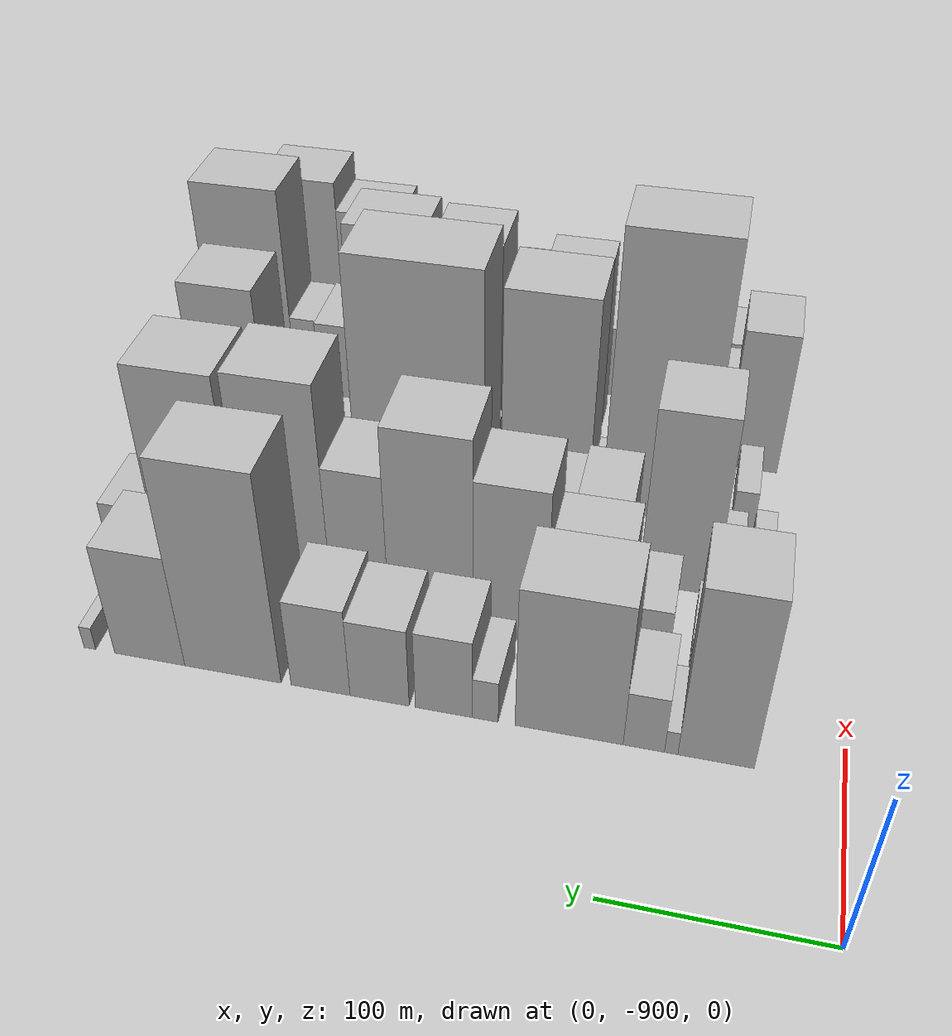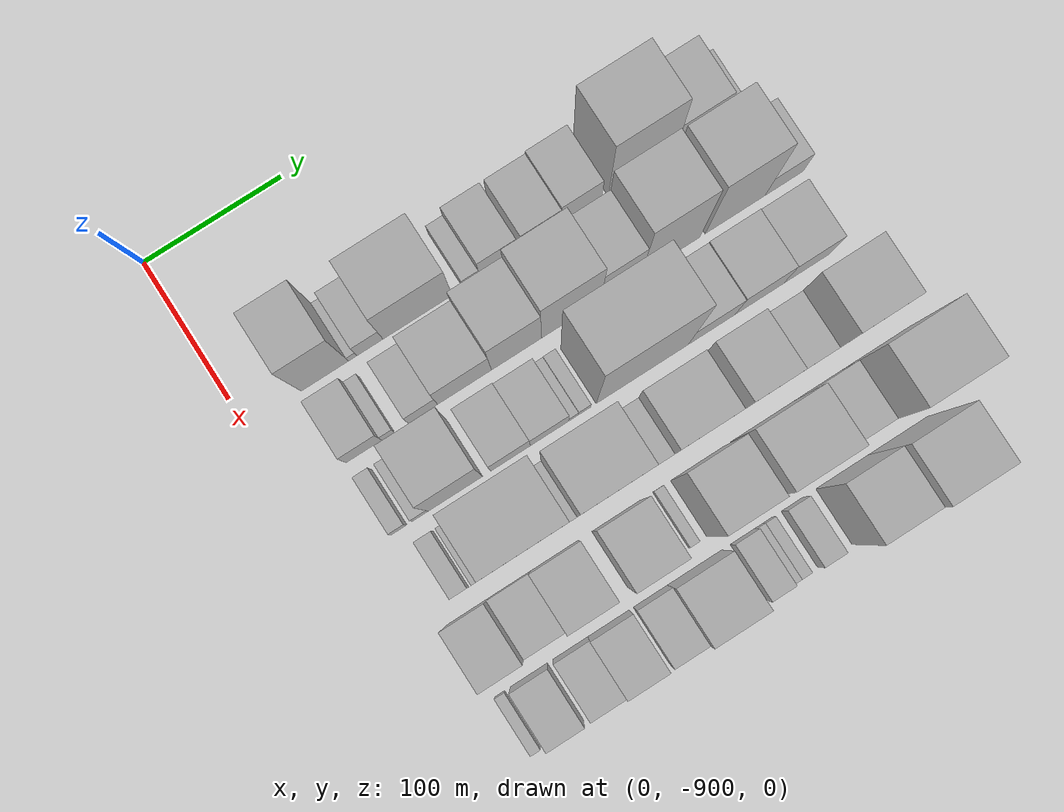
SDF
<sdf version="1.6">
 <world name="default">
  <model name="building_1">
   <static>1</static>
   <pose>100.0000 -842.8567 0 0.000000 0.000000 0.000000</pose>
   <link name="link">
    <pose>0 0 54.00 0 0 0</pose>
    <collision name="collision"><geometry><box><size>40.0000 34.2865 108.0000</size></box></geometry></collision>
    <visual name="visual">
     <cast_shadows>0</cast_shadows>
     <geometry><box><size>40.0000 34.2865 108.0000</size></box></geometry>
     <material>
      <script>
       <uri>model://HANNAS_wall/materials/scripts</uri>
       <uri>model://HANNAS_wall/materials/textures</uri>
       <name>vrc/HANNAS_wall</name>
      </script>
     </material>
    </visual>
   </link>
  </model>
  <model name="building_2">
   <static>1</static>
   <pose>100.0000 -822.6795 0 0.000000 0.000000 0.000000</pose>
   <link name="link">
    <pose>0 0 7.50 0 0 0</pose>
    <collision name="collision"><geometry><box><size>40.0000 6.0679 15.0000</size></box></geometry></collision>
    <visual name="visual">
     <cast_shadows>0</cast_shadows>
     <geometry><box><size>40.0000 6.0679 15.0000</size></box></geometry>
     <material>
      <script>
       <uri>model://HANNAS_wall/materials/scripts</uri>
       <uri>model://HANNAS_wall/materials/textures</uri>
       <name>vrc/HANNAS_wall</name>
      </script>
     </material>
    </visual>
   </link>
  </model>
  <model name="building_3">
   <static>1</static>
   <pose>100.0000 -810.2094 0 0.000000 0.000000 0.000000</pose>
   <link name="link">
    <pose>0 0 18.00 0 0 0</pose>
    <collision name="collision"><geometry><box><size>40.0000 18.8723 36.0000</size></box></geometry></collision>
    <visual name="visual">
     <cast_shadows>0</cast_shadows>
     <geometry><box><size>40.0000 18.8723 36.0000</size></box></geometry>
     <material>
      <script>
       <uri>model://HANNAS_wall/materials/scripts</uri>
       <uri>model://HANNAS_wall/materials/textures</uri>
       <name>vrc/HANNAS_wall</name>
      </script>
     </material>
    </visual>
   </link>
  </model>
  <model name="building_4">
   <static>1</static>
   <pose>100.0000 -775.6286 0 0.000000 0.000000 0.000000</pose>
   <link name="link">
    <pose>0 0 45.00 0 0 0</pose>
    <collision name="collision"><geometry><box><size>40.0000 50.2893 90.0000</size></box></geometry></collision>
    <visual name="visual">
     <cast_shadows>0</cast_shadows>
     <geometry><box><size>40.0000 50.2893 90.0000</size></box></geometry>
     <material>
      <script>
       <uri>model://HANNAS_wall/materials/scripts</uri>
       <uri>model://HANNAS_wall/materials/textures</uri>
       <name>vrc/HANNAS_wall</name>
      </script>
     </material>
    </visual>
   </link>
  </model>
  <model name="building_5">
   <static>1</static>
   <pose>100.0000 -736.3963 0 0.000000 0.000000 0.000000</pose>
   <link name="link">
    <pose>0 0 13.50 0 0 0</pose>
    <collision name="collision"><geometry><box><size>40.0000 12.1753 27.0000</size></box></geometry></collision>
    <visual name="visual">
     <cast_shadows>0</cast_shadows>
     <geometry><box><size>40.0000 12.1753 27.0000</size></box></geometry>
     <material>
      <script>
       <uri>model://HANNAS_wall/materials/scripts</uri>
       <uri>model://HANNAS_wall/materials/textures</uri>
       <name>vrc/HANNAS_wall</name>
      </script>
     </material>
    </visual>
   </link>
  </model>
  <model name="building_6">
   <static>1</static>
   <pose>100.0000 -716.5740 0 0.000000 0.000000 0.000000</pose>
   <link name="link">
    <pose>0 0 25.50 0 0 0</pose>
    <collision name="collision"><geometry><box><size>40.0000 27.4694 51.0000</size></box></geometry></collision>
    <visual name="visual">
     <cast_shadows>0</cast_shadows>
     <geometry><box><size>40.0000 27.4694 51.0000</size></box></geometry>
     <material>
      <script>
       <uri>model://HANNAS_wall/materials/scripts</uri>
       <uri>model://HANNAS_wall/materials/textures</uri>
       <name>vrc/HANNAS_wall</name>
      </script>
     </material>
    </visual>
   </link>
  </model>
  <model name="building_7">
   <static>1</static>
   <pose>100.0000 -685.3520 0 0.000000 0.000000 0.000000</pose>
   <link name="link">
    <pose>0 0 25.50 0 0 0</pose>
    <collision name="collision"><geometry><box><size>40.0000 28.9746 51.0000</size></box></geometry></collision>
    <visual name="visual">
     <cast_shadows>0</cast_shadows>
     <geometry><box><size>40.0000 28.9746 51.0000</size></box></geometry>
     <material>
      <script>
       <uri>model://HANNAS_wall/materials/scripts</uri>
       <uri>model://HANNAS_wall/materials/textures</uri>
       <name>vrc/HANNAS_wall</name>
      </script>
     </material>
    </visual>
   </link>
  </model>
  <model name="building_8">
   <static>1</static>
   <pose>100.0000 -656.1818 0 0.000000 0.000000 0.000000</pose>
   <link name="link">
    <pose>0 0 28.50 0 0 0</pose>
    <collision name="collision"><geometry><box><size>40.0000 29.3658 57.0000</size></box></geometry></collision>
    <visual name="visual">
     <cast_shadows>0</cast_shadows>
     <geometry><box><size>40.0000 29.3658 57.0000</size></box></geometry>
     <material>
      <script>
       <uri>model://HANNAS_wall/materials/scripts</uri>
       <uri>model://HANNAS_wall/materials/textures</uri>
       <name>vrc/HANNAS_wall</name>
      </script>
     </material>
    </visual>
   </link>
  </model>
  <model name="building_9">
   <static>1</static>
   <pose>100.0000 -611.9752 0 0.000000 0.000000 0.000000</pose>
   <link name="link">
    <pose>0 0 66.00 0 0 0</pose>
    <collision name="collision"><geometry><box><size>40.0000 49.0474 132.0000</size></box></geometry></collision>
    <visual name="visual">
     <cast_shadows>0</cast_shadows>
     <geometry><box><size>40.0000 49.0474 132.0000</size></box></geometry>
     <material>
      <script>
       <uri>model://HANNAS_wall/materials/scripts</uri>
       <uri>model://HANNAS_wall/materials/textures</uri>
       <name>vrc/HANNAS_wall</name>
      </script>
     </material>
    </visual>
   </link>
  </model>
  <model name="building_10">
   <static>1</static>
   <pose>100.0000 -569.1841 0 0.000000 0.000000 0.000000</pose>
   <link name="link">
    <pose>0 0 36.00 0 0 0</pose>
    <collision name="collision"><geometry><box><size>40.0000 36.5348 72.0000</size></box></geometry></collision>
    <visual name="visual">
     <cast_shadows>0</cast_shadows>
     <geometry><box><size>40.0000 36.5348 72.0000</size></box></geometry>
     <material>
      <script>
       <uri>model://HANNAS_wall/materials/scripts</uri>
       <uri>model://HANNAS_wall/materials/textures</uri>
       <name>vrc/HANNAS_wall</name>
      </script>
     </material>
    </visual>
   </link>
  </model>
  <model name="building_11">
   <static>1</static>
   <pose>100.0000 -537.8415 0 0.000000 0.000000 0.000000</pose>
   <link name="link">
    <pose>0 0 7.50 0 0 0</pose>
    <collision name="collision"><geometry><box><size>40.0000 6.1504 15.0000</size></box></geometry></collision>
    <visual name="visual">
     <cast_shadows>0</cast_shadows>
     <geometry><box><size>40.0000 6.1504 15.0000</size></box></geometry>
     <material>
      <script>
       <uri>model://HANNAS_wall/materials/scripts</uri>
       <uri>model://HANNAS_wall/materials/textures</uri>
       <name>vrc/HANNAS_wall</name>
      </script>
     </material>
    </visual>
   </link>
  </model>
  <model name="building_54">
   <static>1</static>
   <pose>152.0000 -847.2493 0 0.000000 0.000000 0.000000</pose>
   <link name="link">
    <pose>0 0 22.50 0 0 0</pose>
    <collision name="collision"><geometry><box><size>40.0000 25.5014 45.0000</size></box></geometry></collision>
    <visual name="visual">
     <cast_shadows>0</cast_shadows>
     <geometry><box><size>40.0000 25.5014 45.0000</size></box></geometry>
     <material>
      <script>
       <uri>model://HANNAS_wall/materials/scripts</uri>
       <uri>model://HANNAS_wall/materials/textures</uri>
       <name>vrc/HANNAS_wall</name>
      </script>
     </material>
    </visual>
   </link>
  </model>
  <model name="building_55">
   <static>1</static>
   <pose>152.0000 -829.9720 0 0.000000 0.000000 0.000000</pose>
   <link name="link">
    <pose>0 0 10.50 0 0 0</pose>
    <collision name="collision"><geometry><box><size>40.0000 9.0531 21.0000</size></box></geometry></collision>
    <visual name="visual">
     <cast_shadows>0</cast_shadows>
     <geometry><box><size>40.0000 9.0531 21.0000</size></box></geometry>
     <material>
      <script>
       <uri>model://HANNAS_wall/materials/scripts</uri>
       <uri>model://HANNAS_wall/materials/textures</uri>
       <name>vrc/HANNAS_wall</name>
      </script>
     </material>
    </visual>
   </link>
  </model>
  <model name="building_56">
   <static>1</static>
   <pose>152.0000 -804.8071 0 0.000000 0.000000 0.000000</pose>
   <link name="link">
    <pose>0 0 18.00 0 0 0</pose>
    <collision name="collision"><geometry><box><size>40.0000 21.2767 36.0000</size></box></geometry></collision>
    <visual name="visual">
     <cast_shadows>0</cast_shadows>
     <geometry><box><size>40.0000 21.2767 36.0000</size></box></geometry>
     <material>
      <script>
       <uri>model://HANNAS_wall/materials/scripts</uri>
       <uri>model://HANNAS_wall/materials/textures</uri>
       <name>vrc/HANNAS_wall</name>
      </script>
     </material>
    </visual>
   </link>
  </model>
  <model name="building_57">
   <static>1</static>
   <pose>152.0000 -774.6374 0 0.000000 0.000000 0.000000</pose>
   <link name="link">
    <pose>0 0 33.00 0 0 0</pose>
    <collision name="collision"><geometry><box><size>40.0000 39.0627 66.0000</size></box></geometry></collision>
    <visual name="visual">
     <cast_shadows>0</cast_shadows>
     <geometry><box><size>40.0000 39.0627 66.0000</size></box></geometry>
     <material>
      <script>
       <uri>model://HANNAS_wall/materials/scripts</uri>
       <uri>model://HANNAS_wall/materials/textures</uri>
       <name>vrc/HANNAS_wall</name>
      </script>
     </material>
    </visual>
   </link>
  </model>
  <model name="building_58">
   <static>1</static>
   <pose>152.0000 -736.8742 0 0.000000 0.000000 0.000000</pose>
   <link name="link">
    <pose>0 0 49.50 0 0 0</pose>
    <collision name="collision"><geometry><box><size>40.0000 36.4637 99.0000</size></box></geometry></collision>
    <visual name="visual">
     <cast_shadows>0</cast_shadows>
     <geometry><box><size>40.0000 36.4637 99.0000</size></box></geometry>
     <material>
      <script>
       <uri>model://HANNAS_wall/materials/scripts</uri>
       <uri>model://HANNAS_wall/materials/textures</uri>
       <name>vrc/HANNAS_wall</name>
      </script>
     </material>
    </visual>
   </link>
  </model>
  <model name="building_59">
   <static>1</static>
   <pose>152.0000 -697.1276 0 0.000000 0.000000 0.000000</pose>
   <link name="link">
    <pose>0 0 61.50 0 0 0</pose>
    <collision name="collision"><geometry><box><size>40.0000 43.0296 123.0000</size></box></geometry></collision>
    <visual name="visual">
     <cast_shadows>0</cast_shadows>
     <geometry><box><size>40.0000 43.0296 123.0000</size></box></geometry>
     <material>
      <script>
       <uri>model://HANNAS_wall/materials/scripts</uri>
       <uri>model://HANNAS_wall/materials/textures</uri>
       <name>vrc/HANNAS_wall</name>
      </script>
     </material>
    </visual>
   </link>
  </model>
  <model name="building_60">
   <static>1</static>
   <pose>152.0000 -660.8821 0 0.000000 0.000000 0.000000</pose>
   <link name="link">
    <pose>0 0 46.50 0 0 0</pose>
    <collision name="collision"><geometry><box><size>40.0000 29.4615 93.0000</size></box></geometry></collision>
    <visual name="visual">
     <cast_shadows>0</cast_shadows>
     <geometry><box><size>40.0000 29.4615 93.0000</size></box></geometry>
     <material>
      <script>
       <uri>model://HANNAS_wall/materials/scripts</uri>
       <uri>model://HANNAS_wall/materials/textures</uri>
       <name>vrc/HANNAS_wall</name>
      </script>
     </material>
    </visual>
   </link>
  </model>
  <model name="building_61">
   <static>1</static>
   <pose>152.0000 -624.5359 0 0.000000 0.000000 0.000000</pose>
   <link name="link">
    <pose>0 0 70.50 0 0 0</pose>
    <collision name="collision"><geometry><box><size>40.0000 43.2308 141.0000</size></box></geometry></collision>
    <visual name="visual">
     <cast_shadows>0</cast_shadows>
     <geometry><box><size>40.0000 43.2308 141.0000</size></box></geometry>
     <material>
      <script>
       <uri>model://HANNAS_wall/materials/scripts</uri>
       <uri>model://HANNAS_wall/materials/textures</uri>
       <name>vrc/HANNAS_wall</name>
      </script>
     </material>
    </visual>
   </link>
  </model>
  <model name="building_62">
   <static>1</static>
   <pose>152.0000 -576.8171 0 0.000000 0.000000 0.000000</pose>
   <link name="link">
    <pose>0 0 69.00 0 0 0</pose>
    <collision name="collision"><geometry><box><size>40.0000 44.2067 138.0000</size></box></geometry></collision>
    <visual name="visual">
     <cast_shadows>0</cast_shadows>
     <geometry><box><size>40.0000 44.2067 138.0000</size></box></geometry>
     <material>
      <script>
       <uri>model://HANNAS_wall/materials/scripts</uri>
       <uri>model://HANNAS_wall/materials/textures</uri>
       <name>vrc/HANNAS_wall</name>
      </script>
     </material>
    </visual>
   </link>
  </model>
  <model name="building_63">
   <static>1</static>
   <pose>152.0000 -540.6397 0 0.000000 0.000000 0.000000</pose>
   <link name="link">
    <pose>0 0 24.00 0 0 0</pose>
    <collision name="collision"><geometry><box><size>40.0000 28.1481 48.0000</size></box></geometry></collision>
    <visual name="visual">
     <cast_shadows>0</cast_shadows>
     <geometry><box><size>40.0000 28.1481 48.0000</size></box></geometry>
     <material>
      <script>
       <uri>model://HANNAS_wall/materials/scripts</uri>
       <uri>model://HANNAS_wall/materials/textures</uri>
       <name>vrc/HANNAS_wall</name>
      </script>
     </material>
    </visual>
   </link>
  </model>
  <model name="building_105">
   <static>1</static>
   <pose>204.0000 -854.5983 0 0.000000 0.000000 0.000000</pose>
   <link name="link">
    <pose>0 0 13.50 0 0 0</pose>
    <collision name="collision"><geometry><box><size>40.0000 10.8033 27.0000</size></box></geometry></collision>
    <visual name="visual">
     <cast_shadows>0</cast_shadows>
     <geometry><box><size>40.0000 10.8033 27.0000</size></box></geometry>
     <material>
      <script>
       <uri>model://HANNAS_wall/materials/scripts</uri>
       <uri>model://HANNAS_wall/materials/textures</uri>
       <name>vrc/HANNAS_wall</name>
      </script>
     </material>
    </visual>
   </link>
  </model>
  <model name="building_106">
   <static>1</static>
   <pose>204.0000 -839.3676 0 0.000000 0.000000 0.000000</pose>
   <link name="link">
    <pose>0 0 12.00 0 0 0</pose>
    <collision name="collision"><geometry><box><size>40.0000 11.6581 24.0000</size></box></geometry></collision>
    <visual name="visual">
     <cast_shadows>0</cast_shadows>
     <geometry><box><size>40.0000 11.6581 24.0000</size></box></geometry>
     <material>
      <script>
       <uri>model://HANNAS_wall/materials/scripts</uri>
       <uri>model://HANNAS_wall/materials/textures</uri>
       <name>vrc/HANNAS_wall</name>
      </script>
     </material>
    </visual>
   </link>
  </model>
  <model name="building_107">
   <static>1</static>
   <pose>204.0000 -814.0601 0 0.000000 0.000000 0.000000</pose>
   <link name="link">
    <pose>0 0 57.00 0 0 0</pose>
    <collision name="collision"><geometry><box><size>40.0000 38.9570 114.0000</size></box></geometry></collision>
    <visual name="visual">
     <cast_shadows>0</cast_shadows>
     <geometry><box><size>40.0000 38.9570 114.0000</size></box></geometry>
     <material>
      <script>
       <uri>model://HANNAS_wall/materials/scripts</uri>
       <uri>model://HANNAS_wall/materials/textures</uri>
       <name>vrc/HANNAS_wall</name>
      </script>
     </material>
    </visual>
   </link>
  </model>
  <model name="building_108">
   <static>1</static>
   <pose>204.0000 -774.3793 0 0.000000 0.000000 0.000000</pose>
   <link name="link">
    <pose>0 0 27.00 0 0 0</pose>
    <collision name="collision"><geometry><box><size>40.0000 28.4046 54.0000</size></box></geometry></collision>
    <visual name="visual">
     <cast_shadows>0</cast_shadows>
     <geometry><box><size>40.0000 28.4046 54.0000</size></box></geometry>
     <material>
      <script>
       <uri>model://HANNAS_wall/materials/scripts</uri>
       <uri>model://HANNAS_wall/materials/textures</uri>
       <name>vrc/HANNAS_wall</name>
      </script>
     </material>
    </visual>
   </link>
  </model>
  <model name="building_109">
   <static>1</static>
   <pose>204.0000 -746.3377 0 0.000000 0.000000 0.000000</pose>
   <link name="link">
    <pose>0 0 24.00 0 0 0</pose>
    <collision name="collision"><geometry><box><size>40.0000 27.6785 48.0000</size></box></geometry></collision>
    <visual name="visual">
     <cast_shadows>0</cast_shadows>
     <geometry><box><size>40.0000 27.6785 48.0000</size></box></geometry>
     <material>
      <script>
       <uri>model://HANNAS_wall/materials/scripts</uri>
       <uri>model://HANNAS_wall/materials/textures</uri>
       <name>vrc/HANNAS_wall</name>
      </script>
     </material>
    </visual>
   </link>
  </model>
  <model name="building_110">
   <static>1</static>
   <pose>204.0000 -728.8970 0 0.000000 0.000000 0.000000</pose>
   <link name="link">
    <pose>0 0 9.00 0 0 0</pose>
    <collision name="collision"><geometry><box><size>40.0000 7.2028 18.0000</size></box></geometry></collision>
    <visual name="visual">
     <cast_shadows>0</cast_shadows>
     <geometry><box><size>40.0000 7.2028 18.0000</size></box></geometry>
     <material>
      <script>
       <uri>model://HANNAS_wall/materials/scripts</uri>
       <uri>model://HANNAS_wall/materials/textures</uri>
       <name>vrc/HANNAS_wall</name>
      </script>
     </material>
    </visual>
   </link>
  </model>
  <model name="building_111">
   <static>1</static>
   <pose>204.0000 -720.8449 0 0.000000 0.000000 0.000000</pose>
   <link name="link">
    <pose>0 0 10.50 0 0 0</pose>
    <collision name="collision"><geometry><box><size>40.0000 8.9016 21.0000</size></box></geometry></collision>
    <visual name="visual">
     <cast_shadows>0</cast_shadows>
     <geometry><box><size>40.0000 8.9016 21.0000</size></box></geometry>
     <material>
      <script>
       <uri>model://HANNAS_wall/materials/scripts</uri>
       <uri>model://HANNAS_wall/materials/textures</uri>
       <name>vrc/HANNAS_wall</name>
      </script>
     </material>
    </visual>
   </link>
  </model>
  <model name="building_112">
   <static>1</static>
   <pose>204.0000 -678.8029 0 0.000000 0.000000 0.000000</pose>
   <link name="link">
    <pose>0 0 88.50 0 0 0</pose>
    <collision name="collision"><geometry><box><size>40.0000 67.1824 177.0000</size></box></geometry></collision>
    <visual name="visual">
     <cast_shadows>0</cast_shadows>
     <geometry><box><size>40.0000 67.1824 177.0000</size></box></geometry>
     <material>
      <script>
       <uri>model://HANNAS_wall/materials/scripts</uri>
       <uri>model://HANNAS_wall/materials/textures</uri>
       <name>vrc/HANNAS_wall</name>
      </script>
     </material>
    </visual>
   </link>
  </model>
  <model name="building_113">
   <static>1</static>
   <pose>204.0000 -628.0158 0 0.000000 0.000000 0.000000</pose>
   <link name="link">
    <pose>0 0 31.50 0 0 0</pose>
    <collision name="collision"><geometry><box><size>40.0000 34.3918 63.0000</size></box></geometry></collision>
    <visual name="visual">
     <cast_shadows>0</cast_shadows>
     <geometry><box><size>40.0000 34.3918 63.0000</size></box></geometry>
     <material>
      <script>
       <uri>model://HANNAS_wall/materials/scripts</uri>
       <uri>model://HANNAS_wall/materials/textures</uri>
       <name>vrc/HANNAS_wall</name>
      </script>
     </material>
    </visual>
   </link>
  </model>
  <model name="building_114">
   <static>1</static>
   <pose>204.0000 -593.0859 0 0.000000 0.000000 0.000000</pose>
   <link name="link">
    <pose>0 0 33.00 0 0 0</pose>
    <collision name="collision"><geometry><box><size>40.0000 35.4679 66.0000</size></box></geometry></collision>
    <visual name="visual">
     <cast_shadows>0</cast_shadows>
     <geometry><box><size>40.0000 35.4679 66.0000</size></box></geometry>
     <material>
      <script>
       <uri>model://HANNAS_wall/materials/scripts</uri>
       <uri>model://HANNAS_wall/materials/textures</uri>
       <name>vrc/HANNAS_wall</name>
      </script>
     </material>
    </visual>
   </link>
  </model>
  <model name="building_115">
   <static>1</static>
   <pose>204.0000 -558.4298 0 0.000000 0.000000 0.000000</pose>
   <link name="link">
    <pose>0 0 31.50 0 0 0</pose>
    <collision name="collision"><geometry><box><size>40.0000 33.8442 63.0000</size></box></geometry></collision>
    <visual name="visual">
     <cast_shadows>0</cast_shadows>
     <geometry><box><size>40.0000 33.8442 63.0000</size></box></geometry>
     <material>
      <script>
       <uri>model://HANNAS_wall/materials/scripts</uri>
       <uri>model://HANNAS_wall/materials/textures</uri>
       <name>vrc/HANNAS_wall</name>
      </script>
     </material>
    </visual>
   </link>
  </model>
  <model name="building_157">
   <static>1</static>
   <pose>256.0000 -843.8660 0 0.000000 0.000000 0.000000</pose>
   <link name="link">
    <pose>0 0 13.50 0 0 0</pose>
    <collision name="collision"><geometry><box><size>40.0000 12.2681 27.0000</size></box></geometry></collision>
    <visual name="visual">
     <cast_shadows>0</cast_shadows>
     <geometry><box><size>40.0000 12.2681 27.0000</size></box></geometry>
     <material>
      <script>
       <uri>model://HANNAS_wall/materials/scripts</uri>
       <uri>model://HANNAS_wall/materials/textures</uri>
       <name>vrc/HANNAS_wall</name>
      </script>
     </material>
    </visual>
   </link>
  </model>
  <model name="building_158">
   <static>1</static>
   <pose>256.0000 -829.0347 0 0.000000 0.000000 0.000000</pose>
   <link name="link">
    <pose>0 0 13.50 0 0 0</pose>
    <collision name="collision"><geometry><box><size>40.0000 11.3944 27.0000</size></box></geometry></collision>
    <visual name="visual">
     <cast_shadows>0</cast_shadows>
     <geometry><box><size>40.0000 11.3944 27.0000</size></box></geometry>
     <material>
      <script>
       <uri>model://HANNAS_wall/materials/scripts</uri>
       <uri>model://HANNAS_wall/materials/textures</uri>
       <name>vrc/HANNAS_wall</name>
      </script>
     </material>
    </visual>
   </link>
  </model>
  <model name="building_159">
   <static>1</static>
   <pose>256.0000 -795.3706 0 0.000000 0.000000 0.000000</pose>
   <link name="link">
    <pose>0 0 88.50 0 0 0</pose>
    <collision name="collision"><geometry><box><size>40.0000 55.9339 177.0000</size></box></geometry></collision>
    <visual name="visual">
     <cast_shadows>0</cast_shadows>
     <geometry><box><size>40.0000 55.9339 177.0000</size></box></geometry>
     <material>
      <script>
       <uri>model://HANNAS_wall/materials/scripts</uri>
       <uri>model://HANNAS_wall/materials/textures</uri>
       <name>vrc/HANNAS_wall</name>
      </script>
     </material>
    </visual>
   </link>
  </model>
  <model name="building_160">
   <static>1</static>
   <pose>256.0000 -763.7081 0 0.000000 0.000000 0.000000</pose>
   <link name="link">
    <pose>0 0 9.00 0 0 0</pose>
    <collision name="collision"><geometry><box><size>40.0000 7.3911 18.0000</size></box></geometry></collision>
    <visual name="visual">
     <cast_shadows>0</cast_shadows>
     <geometry><box><size>40.0000 7.3911 18.0000</size></box></geometry>
     <material>
      <script>
       <uri>model://HANNAS_wall/materials/scripts</uri>
       <uri>model://HANNAS_wall/materials/textures</uri>
       <name>vrc/HANNAS_wall</name>
      </script>
     </material>
    </visual>
   </link>
  </model>
  <model name="building_161">
   <static>1</static>
   <pose>256.0000 -735.3913 0 0.000000 0.000000 0.000000</pose>
   <link name="link">
    <pose>0 0 67.50 0 0 0</pose>
    <collision name="collision"><geometry><box><size>40.0000 49.2424 135.0000</size></box></geometry></collision>
    <visual name="visual">
     <cast_shadows>0</cast_shadows>
     <geometry><box><size>40.0000 49.2424 135.0000</size></box></geometry>
     <material>
      <script>
       <uri>model://HANNAS_wall/materials/scripts</uri>
       <uri>model://HANNAS_wall/materials/textures</uri>
       <name>vrc/HANNAS_wall</name>
      </script>
     </material>
    </visual>
   </link>
  </model>
  <model name="building_162">
   <static>1</static>
   <pose>256.0000 -697.3464 0 0.000000 0.000000 0.000000</pose>
   <link name="link">
    <pose>0 0 13.50 0 0 0</pose>
    <collision name="collision"><geometry><box><size>40.0000 12.8475 27.0000</size></box></geometry></collision>
    <visual name="visual">
     <cast_shadows>0</cast_shadows>
     <geometry><box><size>40.0000 12.8475 27.0000</size></box></geometry>
     <material>
      <script>
       <uri>model://HANNAS_wall/materials/scripts</uri>
       <uri>model://HANNAS_wall/materials/textures</uri>
       <name>vrc/HANNAS_wall</name>
      </script>
     </material>
    </visual>
   </link>
  </model>
  <model name="building_163">
   <static>1</static>
   <pose>256.0000 -669.1683 0 0.000000 0.000000 0.000000</pose>
   <link name="link">
    <pose>0 0 37.50 0 0 0</pose>
    <collision name="collision"><geometry><box><size>40.0000 43.5087 75.0000</size></box></geometry></collision>
    <visual name="visual">
     <cast_shadows>0</cast_shadows>
     <geometry><box><size>40.0000 43.5087 75.0000</size></box></geometry>
     <material>
      <script>
       <uri>model://HANNAS_wall/materials/scripts</uri>
       <uri>model://HANNAS_wall/materials/textures</uri>
       <name>vrc/HANNAS_wall</name>
      </script>
     </material>
    </visual>
   </link>
  </model>
  <model name="building_164">
   <static>1</static>
   <pose>256.0000 -627.1436 0 0.000000 0.000000 0.000000</pose>
   <link name="link">
    <pose>0 0 49.50 0 0 0</pose>
    <collision name="collision"><geometry><box><size>40.0000 34.5407 99.0000</size></box></geometry></collision>
    <visual name="visual">
     <cast_shadows>0</cast_shadows>
     <geometry><box><size>40.0000 34.5407 99.0000</size></box></geometry>
     <material>
      <script>
       <uri>model://HANNAS_wall/materials/scripts</uri>
       <uri>model://HANNAS_wall/materials/textures</uri>
       <name>vrc/HANNAS_wall</name>
      </script>
     </material>
    </visual>
   </link>
  </model>
  <model name="building_165">
   <static>1</static>
   <pose>256.0000 -588.8058 0 0.000000 0.000000 0.000000</pose>
   <link name="link">
    <pose>0 0 22.50 0 0 0</pose>
    <collision name="collision"><geometry><box><size>40.0000 24.1349 45.0000</size></box></geometry></collision>
    <visual name="visual">
     <cast_shadows>0</cast_shadows>
     <geometry><box><size>40.0000 24.1349 45.0000</size></box></geometry>
     <material>
      <script>
       <uri>model://HANNAS_wall/materials/scripts</uri>
       <uri>model://HANNAS_wall/materials/textures</uri>
       <name>vrc/HANNAS_wall</name>
      </script>
     </material>
    </visual>
   </link>
  </model>
  <model name="building_166">
   <static>1</static>
   <pose>256.0000 -555.8546 0 0.000000 0.000000 0.000000</pose>
   <link name="link">
    <pose>0 0 57.00 0 0 0</pose>
    <collision name="collision"><geometry><box><size>40.0000 41.7674 114.0000</size></box></geometry></collision>
    <visual name="visual">
     <cast_shadows>0</cast_shadows>
     <geometry><box><size>40.0000 41.7674 114.0000</size></box></geometry>
     <material>
      <script>
       <uri>model://HANNAS_wall/materials/scripts</uri>
       <uri>model://HANNAS_wall/materials/textures</uri>
       <name>vrc/HANNAS_wall</name>
      </script>
     </material>
    </visual>
   </link>
  </model>
  <model name="building_208">
   <static>1</static>
   <pose>308.0000 -845.3246 0 0.000000 0.000000 0.000000</pose>
   <link name="link">
    <pose>0 0 46.50 0 0 0</pose>
    <collision name="collision"><geometry><box><size>40.0000 29.3507 93.0000</size></box></geometry></collision>
    <visual name="visual">
     <cast_shadows>0</cast_shadows>
     <geometry><box><size>40.0000 29.3507 93.0000</size></box></geometry>
     <material>
      <script>
       <uri>model://HANNAS_wall/materials/scripts</uri>
       <uri>model://HANNAS_wall/materials/textures</uri>
       <name>vrc/HANNAS_wall</name>
      </script>
     </material>
    </visual>
   </link>
  </model>
  <model name="building_209">
   <static>1</static>
   <pose>308.0000 -815.9365 0 0.000000 0.000000 0.000000</pose>
   <link name="link">
    <pose>0 0 27.00 0 0 0</pose>
    <collision name="collision"><geometry><box><size>40.0000 29.4255 54.0000</size></box></geometry></collision>
    <visual name="visual">
     <cast_shadows>0</cast_shadows>
     <geometry><box><size>40.0000 29.4255 54.0000</size></box></geometry>
     <material>
      <script>
       <uri>model://HANNAS_wall/materials/scripts</uri>
       <uri>model://HANNAS_wall/materials/textures</uri>
       <name>vrc/HANNAS_wall</name>
      </script>
     </material>
    </visual>
   </link>
  </model>
  <model name="building_210">
   <static>1</static>
   <pose>308.0000 -784.0667 0 0.000000 0.000000 0.000000</pose>
   <link name="link">
    <pose>0 0 46.50 0 0 0</pose>
    <collision name="collision"><geometry><box><size>40.0000 34.3142 93.0000</size></box></geometry></collision>
    <visual name="visual">
     <cast_shadows>0</cast_shadows>
     <geometry><box><size>40.0000 34.3142 93.0000</size></box></geometry>
     <material>
      <script>
       <uri>model://HANNAS_wall/materials/scripts</uri>
       <uri>model://HANNAS_wall/materials/textures</uri>
       <name>vrc/HANNAS_wall</name>
      </script>
     </material>
    </visual>
   </link>
  </model>
  <model name="building_211">
   <static>1</static>
   <pose>308.0000 -739.3593 0 0.000000 0.000000 0.000000</pose>
   <link name="link">
    <pose>0 0 57.00 0 0 0</pose>
    <collision name="collision"><geometry><box><size>40.0000 35.1007 114.0000</size></box></geometry></collision>
    <visual name="visual">
     <cast_shadows>0</cast_shadows>
     <geometry><box><size>40.0000 35.1007 114.0000</size></box></geometry>
     <material>
      <script>
       <uri>model://HANNAS_wall/materials/scripts</uri>
       <uri>model://HANNAS_wall/materials/textures</uri>
       <name>vrc/HANNAS_wall</name>
      </script>
     </material>
    </visual>
   </link>
  </model>
  <model name="building_212">
   <static>1</static>
   <pose>308.0000 -709.2899 0 0.000000 0.000000 0.000000</pose>
   <link name="link">
    <pose>0 0 7.50 0 0 0</pose>
    <collision name="collision"><geometry><box><size>40.0000 7.0380 15.0000</size></box></geometry></collision>
    <visual name="visual">
     <cast_shadows>0</cast_shadows>
     <geometry><box><size>40.0000 7.0380 15.0000</size></box></geometry>
     <material>
      <script>
       <uri>model://HANNAS_wall/materials/scripts</uri>
       <uri>model://HANNAS_wall/materials/textures</uri>
       <name>vrc/HANNAS_wall</name>
      </script>
     </material>
    </visual>
   </link>
  </model>
  <model name="building_213">
   <static>1</static>
   <pose>308.0000 -680.1982 0 0.000000 0.000000 0.000000</pose>
   <link name="link">
    <pose>0 0 63.00 0 0 0</pose>
    <collision name="collision"><geometry><box><size>40.0000 39.1455 126.0000</size></box></geometry></collision>
    <visual name="visual">
     <cast_shadows>0</cast_shadows>
     <geometry><box><size>40.0000 39.1455 126.0000</size></box></geometry>
     <material>
      <script>
       <uri>model://HANNAS_wall/materials/scripts</uri>
       <uri>model://HANNAS_wall/materials/textures</uri>
       <name>vrc/HANNAS_wall</name>
      </script>
     </material>
    </visual>
   </link>
  </model>
  <model name="building_214">
   <static>1</static>
   <pose>308.0000 -633.4892 0 0.000000 0.000000 0.000000</pose>
   <link name="link">
    <pose>0 0 64.50 0 0 0</pose>
    <collision name="collision"><geometry><box><size>40.0000 46.2725 129.0000</size></box></geometry></collision>
    <visual name="visual">
     <cast_shadows>0</cast_shadows>
     <geometry><box><size>40.0000 46.2725 129.0000</size></box></geometry>
     <material>
      <script>
       <uri>model://HANNAS_wall/materials/scripts</uri>
       <uri>model://HANNAS_wall/materials/textures</uri>
       <name>vrc/HANNAS_wall</name>
      </script>
     </material>
    </visual>
   </link>
  </model>
  <model name="building_215">
   <static>1</static>
   <pose>308.0000 -592.8003 0 0.000000 0.000000 0.000000</pose>
   <link name="link">
    <pose>0 0 31.50 0 0 0</pose>
    <collision name="collision"><geometry><box><size>40.0000 35.1054 63.0000</size></box></geometry></collision>
    <visual name="visual">
     <cast_shadows>0</cast_shadows>
     <geometry><box><size>40.0000 35.1054 63.0000</size></box></geometry>
     <material>
      <script>
       <uri>model://HANNAS_wall/materials/scripts</uri>
       <uri>model://HANNAS_wall/materials/textures</uri>
       <name>vrc/HANNAS_wall</name>
      </script>
     </material>
    </visual>
   </link>
  </model>
  <model name="building_216">
   <static>1</static>
   <pose>308.0000 -550.3208 0 0.000000 0.000000 0.000000</pose>
   <link name="link">
    <pose>0 0 72.00 0 0 0</pose>
    <collision name="collision"><geometry><box><size>40.0000 49.8535 144.0000</size></box></geometry></collision>
    <visual name="visual">
     <cast_shadows>0</cast_shadows>
     <geometry><box><size>40.0000 49.8535 144.0000</size></box></geometry>
     <material>
      <script>
       <uri>model://HANNAS_wall/materials/scripts</uri>
       <uri>model://HANNAS_wall/materials/textures</uri>
       <name>vrc/HANNAS_wall</name>
      </script>
     </material>
    </visual>
   </link>
  </model>
  <model name="building_259">
   <static>1</static>
   <pose>360.0000 -856.4070 0 0.000000 0.000000 0.000000</pose>
   <link name="link">
    <pose>0 0 7.50 0 0 0</pose>
    <collision name="collision"><geometry><box><size>40.0000 7.1860 15.0000</size></box></geometry></collision>
    <visual name="visual">
     <cast_shadows>0</cast_shadows>
     <geometry><box><size>40.0000 7.1860 15.0000</size></box></geometry>
     <material>
      <script>
       <uri>model://HANNAS_wall/materials/scripts</uri>
       <uri>model://HANNAS_wall/materials/textures</uri>
       <name>vrc/HANNAS_wall</name>
      </script>
     </material>
    </visual>
   </link>
  </model>
  <model name="building_260">
   <static>1</static>
   <pose>360.0000 -835.5515 0 0.000000 0.000000 0.000000</pose>
   <link name="link">
    <pose>0 0 24.00 0 0 0</pose>
    <collision name="collision"><geometry><box><size>40.0000 26.5248 48.0000</size></box></geometry></collision>
    <visual name="visual">
     <cast_shadows>0</cast_shadows>
     <geometry><box><size>40.0000 26.5248 48.0000</size></box></geometry>
     <material>
      <script>
       <uri>model://HANNAS_wall/materials/scripts</uri>
       <uri>model://HANNAS_wall/materials/textures</uri>
       <name>vrc/HANNAS_wall</name>
      </script>
     </material>
    </visual>
   </link>
  </model>
  <model name="building_261">
   <static>1</static>
   <pose>360.0000 -805.7177 0 0.000000 0.000000 0.000000</pose>
   <link name="link">
    <pose>0 0 21.00 0 0 0</pose>
    <collision name="collision"><geometry><box><size>40.0000 25.1429 42.0000</size></box></geometry></collision>
    <visual name="visual">
     <cast_shadows>0</cast_shadows>
     <geometry><box><size>40.0000 25.1429 42.0000</size></box></geometry>
     <material>
      <script>
       <uri>model://HANNAS_wall/materials/scripts</uri>
       <uri>model://HANNAS_wall/materials/textures</uri>
       <name>vrc/HANNAS_wall</name>
      </script>
     </material>
    </visual>
   </link>
  </model>
  <model name="building_262">
   <static>1</static>
   <pose>360.0000 -778.3776 0 0.000000 0.000000 0.000000</pose>
   <link name="link">
    <pose>0 0 27.00 0 0 0</pose>
    <collision name="collision"><geometry><box><size>40.0000 29.5372 54.0000</size></box></geometry></collision>
    <visual name="visual">
     <cast_shadows>0</cast_shadows>
     <geometry><box><size>40.0000 29.5372 54.0000</size></box></geometry>
     <material>
      <script>
       <uri>model://HANNAS_wall/materials/scripts</uri>
       <uri>model://HANNAS_wall/materials/textures</uri>
       <name>vrc/HANNAS_wall</name>
      </script>
     </material>
    </visual>
   </link>
  </model>
  <model name="building_263">
   <static>1</static>
   <pose>360.0000 -748.2339 0 0.000000 0.000000 0.000000</pose>
   <link name="link">
    <pose>0 0 24.00 0 0 0</pose>
    <collision name="collision"><geometry><box><size>40.0000 24.7501 48.0000</size></box></geometry></collision>
    <visual name="visual">
     <cast_shadows>0</cast_shadows>
     <geometry><box><size>40.0000 24.7501 48.0000</size></box></geometry>
     <material>
      <script>
       <uri>model://HANNAS_wall/materials/scripts</uri>
       <uri>model://HANNAS_wall/materials/textures</uri>
       <name>vrc/HANNAS_wall</name>
      </script>
     </material>
    </visual>
   </link>
  </model>
  <model name="building_264">
   <static>1</static>
   <pose>360.0000 -716.1441 0 0.000000 0.000000 0.000000</pose>
   <link name="link">
    <pose>0 0 36.00 0 0 0</pose>
    <collision name="collision"><geometry><box><size>40.0000 39.4296 72.0000</size></box></geometry></collision>
    <visual name="visual">
     <cast_shadows>0</cast_shadows>
     <geometry><box><size>40.0000 39.4296 72.0000</size></box></geometry>
     <material>
      <script>
       <uri>model://HANNAS_wall/materials/scripts</uri>
       <uri>model://HANNAS_wall/materials/textures</uri>
       <name>vrc/HANNAS_wall</name>
      </script>
     </material>
    </visual>
   </link>
  </model>
  <model name="building_265">
   <static>1</static>
   <pose>360.0000 -681.6910 0 0.000000 0.000000 0.000000</pose>
   <link name="link">
    <pose>0 0 15.00 0 0 0</pose>
    <collision name="collision"><geometry><box><size>40.0000 17.4766 30.0000</size></box></geometry></collision>
    <visual name="visual">
     <cast_shadows>0</cast_shadows>
     <geometry><box><size>40.0000 17.4766 30.0000</size></box></geometry>
     <material>
      <script>
       <uri>model://HANNAS_wall/materials/scripts</uri>
       <uri>model://HANNAS_wall/materials/textures</uri>
       <name>vrc/HANNAS_wall</name>
      </script>
     </material>
    </visual>
   </link>
  </model>
  <model name="building_266">
   <static>1</static>
   <pose>360.0000 -669.8928 0 0.000000 0.000000 0.000000</pose>
   <link name="link">
    <pose>0 0 7.50 0 0 0</pose>
    <collision name="collision"><geometry><box><size>40.0000 6.1197 15.0000</size></box></geometry></collision>
    <visual name="visual">
     <cast_shadows>0</cast_shadows>
     <geometry><box><size>40.0000 6.1197 15.0000</size></box></geometry>
     <material>
      <script>
       <uri>model://HANNAS_wall/materials/scripts</uri>
       <uri>model://HANNAS_wall/materials/textures</uri>
       <name>vrc/HANNAS_wall</name>
      </script>
     </material>
    </visual>
   </link>
  </model>
  <model name="building_267">
   <static>1</static>
   <pose>360.0000 -663.0903 0 0.000000 0.000000 0.000000</pose>
   <link name="link">
    <pose>0 0 7.50 0 0 0</pose>
    <collision name="collision"><geometry><box><size>40.0000 7.4853 15.0000</size></box></geometry></collision>
    <visual name="visual">
     <cast_shadows>0</cast_shadows>
     <geometry><box><size>40.0000 7.4853 15.0000</size></box></geometry>
     <material>
      <script>
       <uri>model://HANNAS_wall/materials/scripts</uri>
       <uri>model://HANNAS_wall/materials/textures</uri>
       <name>vrc/HANNAS_wall</name>
      </script>
     </material>
    </visual>
   </link>
  </model>
  <model name="building_268">
   <static>1</static>
   <pose>360.0000 -645.2331 0 0.000000 0.000000 0.000000</pose>
   <link name="link">
    <pose>0 0 15.00 0 0 0</pose>
    <collision name="collision"><geometry><box><size>40.0000 16.2292 30.0000</size></box></geometry></collision>
    <visual name="visual">
     <cast_shadows>0</cast_shadows>
     <geometry><box><size>40.0000 16.2292 30.0000</size></box></geometry>
     <material>
      <script>
       <uri>model://HANNAS_wall/materials/scripts</uri>
       <uri>model://HANNAS_wall/materials/textures</uri>
       <name>vrc/HANNAS_wall</name>
      </script>
     </material>
    </visual>
   </link>
  </model>
  <model name="building_269">
   <static>1</static>
   <pose>360.0000 -608.8675 0 0.000000 0.000000 0.000000</pose>
   <link name="link">
    <pose>0 0 52.50 0 0 0</pose>
    <collision name="collision"><geometry><box><size>40.0000 38.5020 105.0000</size></box></geometry></collision>
    <visual name="visual">
     <cast_shadows>0</cast_shadows>
     <geometry><box><size>40.0000 38.5020 105.0000</size></box></geometry>
     <material>
      <script>
       <uri>model://HANNAS_wall/materials/scripts</uri>
       <uri>model://HANNAS_wall/materials/textures</uri>
       <name>vrc/HANNAS_wall</name>
      </script>
     </material>
    </visual>
   </link>
  </model>
  <model name="building_270">
   <static>1</static>
   <pose>360.0000 -567.8029 0 0.000000 0.000000 0.000000</pose>
   <link name="link">
    <pose>0 0 61.50 0 0 0</pose>
    <collision name="collision"><geometry><box><size>40.0000 43.6272 123.0000</size></box></geometry></collision>
    <visual name="visual">
     <cast_shadows>0</cast_shadows>
     <geometry><box><size>40.0000 43.6272 123.0000</size></box></geometry>
     <material>
      <script>
       <uri>model://HANNAS_wall/materials/scripts</uri>
       <uri>model://HANNAS_wall/materials/textures</uri>
       <name>vrc/HANNAS_wall</name>
      </script>
     </material>
    </visual>
   </link>
  </model>
 </world>
</sdf>
